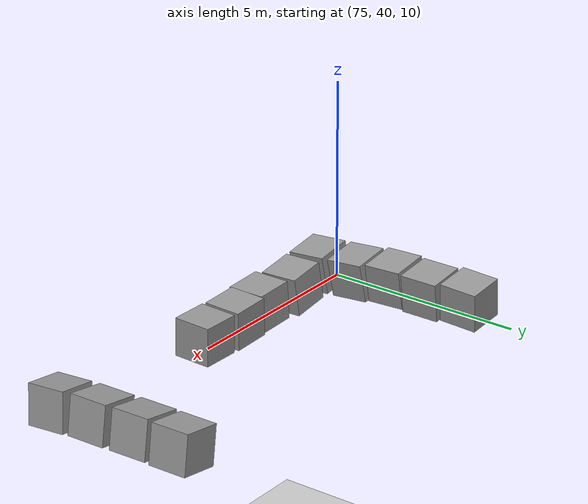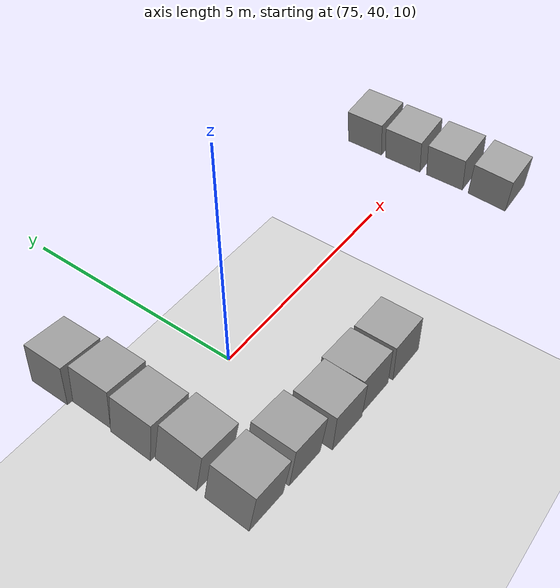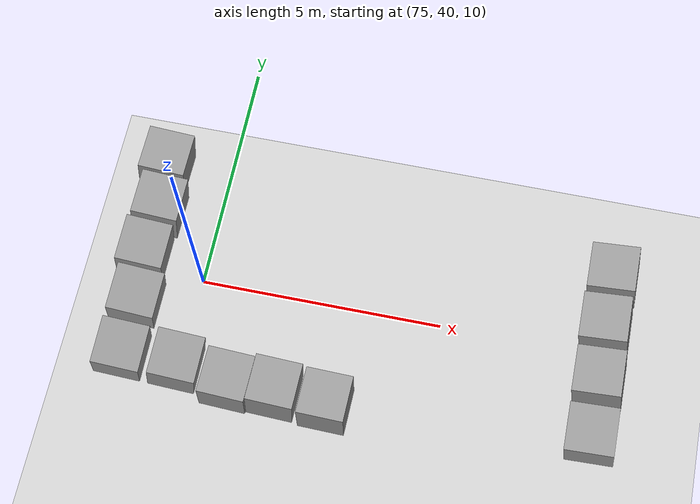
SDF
<sdf version="1.6">
 <world name="default">
  <model name="ground_plane">
   <static>1</static>
   <link name="link">
    <collision name="collision">
     <geometry><plane><normal>0 0 1</normal><size>100 100</size></plane></geometry>
     <surface>
      <contact><collide_bitmask>65535</collide_bitmask></contact>
      <friction><ode><mu>100</mu><mu2>50</mu2></ode></friction>
     </surface>
    </collision>
    <visual name="visual">
     <cast_shadows>0</cast_shadows>
     <geometry><plane><normal>0 0 1</normal><size>100 100</size></plane></geometry>
     <material>
      <script><uri>model://media/materials/scripts/gazebo.material</uri><name>Gazebo/Grey</name></script>
     </material>
    </visual>
   </link>
  </model>
  <model name="unit_box_2_clone_3">
   <pose>77.9304 38.2512 9.01688 -0.014514 -0.001785 -0.019906</pose>
   <link name="link">
    <inertial>
     <mass>1</mass>
     <inertia>
      <ixx>0.166667</ixx>
      <ixy>0</ixy>
      <ixz>0</ixz>
      <iyy>0.166667</iyy>
      <iyz>0</iyz>
      <izz>0.166667</izz>
     </inertia>
    </inertial>
    <collision name="collision"><geometry><box><size>1 1 1</size></box></geometry></collision>
    <visual name="visual">
     <geometry><box><size>1 1 1</size></box></geometry>
     <material>
      <script><name>Gazebo/Grey</name><uri>model://media/materials/scripts/gazebo.material</uri></script>
     </material>
    </visual>
   </link>
  </model>
  <model name="unit_box_2_clone_4">
   <pose>76.8249 38.3089 9.04375 -0.012646 0.047201 -0.02065</pose>
   <link name="link">
    <inertial>
     <mass>1</mass>
     <inertia>
      <ixx>0.166667</ixx>
      <ixy>0</ixy>
      <ixz>0</ixz>
      <iyy>0.166667</iyy>
      <iyz>0</iyz>
      <izz>0.166667</izz>
     </inertia>
    </inertial>
    <collision name="collision"><geometry><box><size>1 1 1</size></box></geometry></collision>
    <visual name="visual">
     <geometry><box><size>1 1 1</size></box></geometry>
     <material>
      <script><name>Gazebo/Grey</name><uri>model://media/materials/scripts/gazebo.material</uri></script>
     </material>
    </visual>
   </link>
  </model>
  <model name="unit_box_2_clone_5">
   <pose>75.8196 38.278 9.09246 0.021735 0.052582 -0.026715</pose>
   <link name="link">
    <inertial>
     <mass>1</mass>
     <inertia>
      <ixx>0.166667</ixx>
      <ixy>0</ixy>
      <ixz>0</ixz>
      <iyy>0.166667</iyy>
      <iyz>0</iyz>
      <izz>0.166667</izz>
     </inertia>
    </inertial>
    <collision name="collision"><geometry><box><size>1 1 1</size></box></geometry></collision>
    <visual name="visual">
     <geometry><box><size>1 1 1</size></box></geometry>
     <material>
      <script><name>Gazebo/Grey</name><uri>model://media/materials/scripts/gazebo.material</uri></script>
     </material>
    </visual>
   </link>
  </model>
  <model name="unit_box_2_clone_6">
   <pose>74.694 38.4484 9.19187 0.047113 0.135811 -0.000397</pose>
   <link name="link">
    <inertial>
     <mass>1</mass>
     <inertia>
      <ixx>0.166667</ixx>
      <ixy>0</ixy>
      <ixz>0</ixz>
      <iyy>0.166667</iyy>
      <iyz>0</iyz>
      <izz>0.166667</izz>
     </inertia>
    </inertial>
    <collision name="collision"><geometry><box><size>1 1 1</size></box></geometry></collision>
    <visual name="visual">
     <geometry><box><size>1 1 1</size></box></geometry>
     <material>
      <script><name>Gazebo/Grey</name><uri>model://media/materials/scripts/gazebo.material</uri></script>
     </material>
    </visual>
   </link>
  </model>
  <model name="unit_box_2_clone_7">
   <pose>73.5292 38.4356 9.33425 0.085917 0.137555 0.003079</pose>
   <link name="link">
    <inertial>
     <mass>1</mass>
     <inertia>
      <ixx>0.166667</ixx>
      <ixy>0</ixy>
      <ixz>0</ixz>
      <iyy>0.166667</iyy>
      <iyz>0</iyz>
      <izz>0.166667</izz>
     </inertia>
    </inertial>
    <collision name="collision"><geometry><box><size>1 1 1</size></box></geometry></collision>
    <visual name="visual">
     <geometry><box><size>1 1 1</size></box></geometry>
     <material>
      <script><name>Gazebo/Grey</name><uri>model://media/materials/scripts/gazebo.material</uri></script>
     </material>
    </visual>
   </link>
  </model>
  <model name="unit_box_2_clone_8">
   <pose>73.5486 39.6094 9.44241 0.097943 0.138642 -0.006762</pose>
   <link name="link">
    <inertial>
     <mass>1</mass>
     <inertia>
      <ixx>0.166667</ixx>
      <ixy>0</ixy>
      <ixz>0</ixz>
      <iyy>0.166667</iyy>
      <iyz>0</iyz>
      <izz>0.166667</izz>
     </inertia>
    </inertial>
    <collision name="collision"><geometry><box><size>1 1 1</size></box></geometry></collision>
    <visual name="visual">
     <geometry><box><size>1 1 1</size></box></geometry>
     <material>
      <script><name>Gazebo/Grey</name><uri>model://media/materials/scripts/gazebo.material</uri></script>
     </material>
    </visual>
   </link>
  </model>
  <model name="unit_box_2_clone_9">
   <pose>73.4655 40.6606 9.52582 0.049162 0.120921 -0.002884</pose>
   <link name="link">
    <inertial>
     <mass>1</mass>
     <inertia>
      <ixx>0.166667</ixx>
      <ixy>0</ixy>
      <ixz>0</ixz>
      <iyy>0.166667</iyy>
      <iyz>0</iyz>
      <izz>0.166667</izz>
     </inertia>
    </inertial>
    <collision name="collision"><geometry><box><size>1 1 1</size></box></geometry></collision>
    <visual name="visual">
     <geometry><box><size>1 1 1</size></box></geometry>
     <material>
      <script><name>Gazebo/Grey</name><uri>model://media/materials/scripts/gazebo.material</uri></script>
     </material>
    </visual>
   </link>
  </model>
  <model name="unit_box_2_clone_10">
   <pose>73.5219 41.7416 9.53961 0.004564 0.10799 -0.005048</pose>
   <link name="link">
    <inertial>
     <mass>1</mass>
     <inertia>
      <ixx>0.166667</ixx>
      <ixy>0</ixy>
      <ixz>0</ixz>
      <iyy>0.166667</iyy>
      <iyz>0</iyz>
      <izz>0.166667</izz>
     </inertia>
    </inertial>
    <collision name="collision"><geometry><box><size>1 1 1</size></box></geometry></collision>
    <visual name="visual">
     <geometry><box><size>1 1 1</size></box></geometry>
     <material>
      <script><name>Gazebo/Grey</name><uri>model://media/materials/scripts/gazebo.material</uri></script>
     </material>
    </visual>
   </link>
  </model>
  <model name="unit_box_2_clone_11">
   <pose>73.4066 42.7861 9.53141 -0.034811 0.093721 -0.007573</pose>
   <link name="link">
    <inertial>
     <mass>1</mass>
     <inertia>
      <ixx>0.166667</ixx>
      <ixy>0</ixy>
      <ixz>0</ixz>
      <iyy>0.166667</iyy>
      <iyz>0</iyz>
      <izz>0.166667</izz>
     </inertia>
    </inertial>
    <collision name="collision"><geometry><box><size>1 1 1</size></box></geometry></collision>
    <visual name="visual">
     <geometry><box><size>1 1 1</size></box></geometry>
     <material>
      <script><name>Gazebo/Grey</name><uri>model://media/materials/scripts/gazebo.material</uri></script>
     </material>
    </visual>
   </link>
  </model>
  <model name="unit_box_2_clone_12">
   <pose>83.4213 38.4966 9.55965 0.070269 -0.131016 -9.9e-05</pose>
   <link name="link">
    <inertial>
     <mass>1</mass>
     <inertia>
      <ixx>0.166667</ixx>
      <ixy>0</ixy>
      <ixz>0</ixz>
      <iyy>0.166667</iyy>
      <iyz>0</iyz>
      <izz>0.166667</izz>
     </inertia>
    </inertial>
    <collision name="collision"><geometry><box><size>1 1 1</size></box></geometry></collision>
    <visual name="visual">
     <geometry><box><size>1 1 1</size></box></geometry>
     <material>
      <script><name>Gazebo/Grey</name><uri>model://media/materials/scripts/gazebo.material</uri></script>
     </material>
    </visual>
   </link>
  </model>
  <model name="unit_box_2_clone_13">
   <pose>83.4094 39.6861 9.61867 0.008555 -0.156391 0.001359</pose>
   <link name="link">
    <inertial>
     <mass>1</mass>
     <inertia>
      <ixx>0.166667</ixx>
      <ixy>0</ixy>
      <ixz>0</ixz>
      <iyy>0.166667</iyy>
      <iyz>0</iyz>
      <izz>0.166667</izz>
     </inertia>
    </inertial>
    <collision name="collision"><geometry><box><size>1 1 1</size></box></geometry></collision>
    <visual name="visual">
     <geometry><box><size>1 1 1</size></box></geometry>
     <material>
      <script><name>Gazebo/Grey</name><uri>model://media/materials/scripts/gazebo.material</uri></script>
     </material>
    </visual>
   </link>
  </model>
  <model name="unit_box_2_clone_14">
   <pose>83.3886 40.8638 9.63095 0.013927 -0.164533 0.002723</pose>
   <link name="link">
    <inertial>
     <mass>1</mass>
     <inertia>
      <ixx>0.166667</ixx>
      <ixy>0</ixy>
      <ixz>0</ixz>
      <iyy>0.166667</iyy>
      <iyz>0</iyz>
      <izz>0.166667</izz>
     </inertia>
    </inertial>
    <collision name="collision"><geometry><box><size>1 1 1</size></box></geometry></collision>
    <visual name="visual">
     <geometry><box><size>1 1 1</size></box></geometry>
     <material>
      <script><name>Gazebo/Grey</name><uri>model://media/materials/scripts/gazebo.material</uri></script>
     </material>
    </visual>
   </link>
  </model>
  <model name="unit_box_2_clone_15">
   <pose>83.4021 41.9892 9.63741 0.009509 -0.147257 0.001474</pose>
   <link name="link">
    <inertial>
     <mass>1</mass>
     <inertia>
      <ixx>0.166667</ixx>
      <ixy>0</ixy>
      <ixz>0</ixz>
      <iyy>0.166667</iyy>
      <iyz>0</iyz>
      <izz>0.166667</izz>
     </inertia>
    </inertial>
    <collision name="collision"><geometry><box><size>1 1 1</size></box></geometry></collision>
    <visual name="visual">
     <geometry><box><size>1 1 1</size></box></geometry>
     <material>
      <script><name>Gazebo/Grey</name><uri>model://media/materials/scripts/gazebo.material</uri></script>
     </material>
    </visual>
   </link>
  </model>
 </world>
</sdf>
